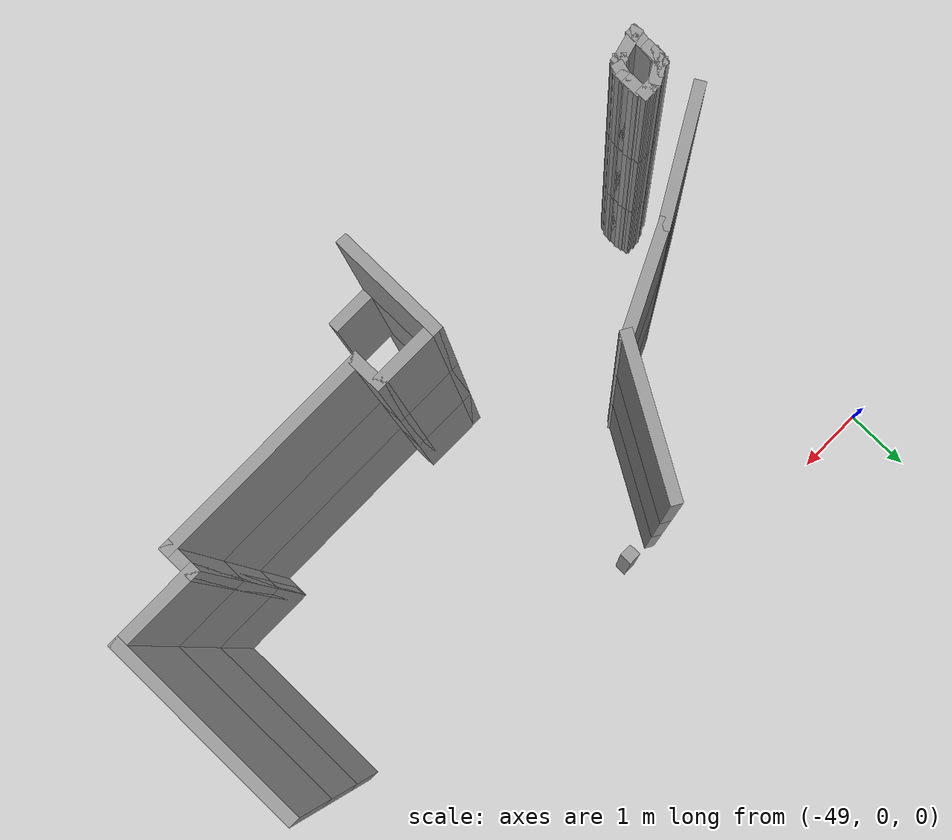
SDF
<sdf version="1.7">
 <model name="mapagazebo">
  <pose>-4.67869 9.01252 0 0 -0 0</pose>
  <link name="Wall_144">
   <collision name="Wall_144_Collision">
    <geometry><box><size>1.5 0.15 2.5</size></box></geometry>
    <pose>0 0 1.25 0 -0 0</pose>
   </collision>
   <visual name="Wall_144_Visual">
    <pose>0 0 1.25 0 -0 0</pose>
    <geometry><box><size>1.5 0.15 2.5</size></box></geometry>
    <material>
     <script><uri>file://media/materials/scripts/gazebo.material</uri><name>Gazebo/Grey</name></script>
     <ambient>1 1 1 1</ambient>
    </material>
    <meta><layer>0</layer></meta>
   </visual>
   <pose>-40.3346 -13.7815 0 0 -0 1.5708</pose>
  </link>
  <link name="Wall_145">
   <collision name="Wall_145_Collision">
    <geometry><box><size>1 0.15 2.5</size></box></geometry>
    <pose>0 0 1.25 0 -0 0</pose>
   </collision>
   <visual name="Wall_145_Visual">
    <pose>0 0 1.25 0 -0 0</pose>
    <geometry><box><size>1 0.15 2.5</size></box></geometry>
    <material>
     <script><uri>file://media/materials/scripts/gazebo.material</uri><name>Gazebo/Grey</name></script>
     <ambient>1 1 1 1</ambient>
    </material>
    <meta><layer>0</layer></meta>
   </visual>
   <pose>-39.9096 -13.1065 0 0 -0 0</pose>
  </link>
  <link name="Wall_146">
   <collision name="Wall_146_Collision">
    <geometry><box><size>0.5 0.15 2.5</size></box></geometry>
    <pose>0 0 1.25 0 -0 0</pose>
   </collision>
   <visual name="Wall_146_Visual">
    <pose>0 0 1.25 0 -0 0</pose>
    <geometry><box><size>0.5 0.15 2.5</size></box></geometry>
    <material>
     <script><uri>file://media/materials/scripts/gazebo.material</uri><name>Gazebo/Grey</name></script>
     <ambient>1 1 1 1</ambient>
    </material>
    <meta><layer>0</layer></meta>
   </visual>
   <pose>-39.4846 -13.2815 0 0 -0 -1.5708</pose>
  </link>
  <link name="Wall_147">
   <collision name="Wall_147_Collision">
    <geometry><box><size>3 0.15 2.5</size></box></geometry>
    <pose>0 0 1.25 0 -0 0</pose>
   </collision>
   <visual name="Wall_147_Visual">
    <pose>0 0 1.25 0 -0 0</pose>
    <geometry><box><size>3 0.15 2.5</size></box></geometry>
    <material>
     <script><uri>file://media/materials/scripts/gazebo.material</uri><name>Gazebo/Grey</name></script>
     <ambient>1 1 1 1</ambient>
    </material>
    <meta><layer>0</layer></meta>
   </visual>
   <pose>-38.0596 -13.4565 0 0 -0 0</pose>
  </link>
  <link name="Wall_148">
   <collision name="Wall_148_Collision">
    <geometry><box><size>0.5 0.15 2.5</size></box></geometry>
    <pose>0 0 1.25 0 -0 0</pose>
   </collision>
   <visual name="Wall_148_Visual">
    <pose>0 0 1.25 0 -0 0</pose>
    <geometry><box><size>0.5 0.15 2.5</size></box></geometry>
    <material>
     <script><uri>file://media/materials/scripts/gazebo.material</uri><name>Gazebo/Grey</name></script>
     <ambient>1 1 1 1</ambient>
    </material>
    <meta><layer>0</layer></meta>
   </visual>
   <pose>-36.6346 -13.2815 0 0 -0 1.5708</pose>
  </link>
  <link name="Wall_149">
   <collision name="Wall_149_Collision">
    <geometry><box><size>1.25 0.15 2.5</size></box></geometry>
    <pose>0 0 1.25 0 -0 0</pose>
   </collision>
   <visual name="Wall_149_Visual">
    <pose>0 0 1.25 0 -0 0</pose>
    <geometry><box><size>1.25 0.15 2.5</size></box></geometry>
    <material>
     <script><uri>file://media/materials/scripts/gazebo.material</uri><name>Gazebo/Grey</name></script>
     <ambient>1 1 1 1</ambient>
    </material>
    <meta><layer>0</layer></meta>
   </visual>
   <pose>-36.0846 -13.1065 0 0 -0 0</pose>
  </link>
  <link name="Wall_150">
   <collision name="Wall_150_Collision">
    <geometry><box><size>2.75 0.15 2.5</size></box></geometry>
    <pose>0 0 1.25 0 -0 0</pose>
   </collision>
   <visual name="Wall_150_Visual">
    <pose>0 0 1.25 0 -0 0</pose>
    <geometry><box><size>2.75 0.15 2.5</size></box></geometry>
    <material>
     <script><uri>file://media/materials/scripts/gazebo.material</uri><name>Gazebo/Grey</name></script>
     <ambient>1 1 1 1</ambient>
    </material>
    <meta><layer>0</layer></meta>
   </visual>
   <pose>-35.5346 -11.8065 0 0 -0 1.5708</pose>
  </link>
  <link name="Wall_1506">
   <collision name="Wall_1506_Collision">
    <geometry><box><size>1.5 0.15 2.5</size></box></geometry>
    <pose>0 0 1.25 0 -0 0</pose>
   </collision>
   <visual name="Wall_1506_Visual">
    <pose>0 0 1.25 0 -0 0</pose>
    <geometry><box><size>1.5 0.15 2.5</size></box></geometry>
    <material>
     <script><uri>file://media/materials/scripts/gazebo.material</uri><name>Gazebo/Grey</name></script>
     <ambient>1 1 1 1</ambient>
    </material>
    <meta><layer>2</layer></meta>
   </visual>
   <pose>-40.3346 -13.7815 5 0 -0 1.5708</pose>
  </link>
  <link name="Wall_1507">
   <collision name="Wall_1507_Collision">
    <geometry><box><size>1 0.15 2.5</size></box></geometry>
    <pose>0 0 1.25 0 -0 0</pose>
   </collision>
   <visual name="Wall_1507_Visual">
    <pose>0 0 1.25 0 -0 0</pose>
    <geometry><box><size>1 0.15 2.5</size></box></geometry>
    <material>
     <script><uri>file://media/materials/scripts/gazebo.material</uri><name>Gazebo/Grey</name></script>
     <ambient>1 1 1 1</ambient>
    </material>
    <meta><layer>2</layer></meta>
   </visual>
   <pose>-39.9096 -13.1065 5 0 -0 0</pose>
  </link>
  <link name="Wall_1508">
   <collision name="Wall_1508_Collision">
    <geometry><box><size>0.5 0.15 2.5</size></box></geometry>
    <pose>0 0 1.25 0 -0 0</pose>
   </collision>
   <visual name="Wall_1508_Visual">
    <pose>0 0 1.25 0 -0 0</pose>
    <geometry><box><size>0.5 0.15 2.5</size></box></geometry>
    <material>
     <script><uri>file://media/materials/scripts/gazebo.material</uri><name>Gazebo/Grey</name></script>
     <ambient>1 1 1 1</ambient>
    </material>
    <meta><layer>2</layer></meta>
   </visual>
   <pose>-39.4846 -13.2815 5 0 -0 -1.5708</pose>
  </link>
  <link name="Wall_1509">
   <collision name="Wall_1509_Collision">
    <geometry><box><size>3 0.15 2.5</size></box></geometry>
    <pose>0 0 1.25 0 -0 0</pose>
   </collision>
   <visual name="Wall_1509_Visual">
    <pose>0 0 1.25 0 -0 0</pose>
    <geometry><box><size>3 0.15 2.5</size></box></geometry>
    <material>
     <script><uri>file://media/materials/scripts/gazebo.material</uri><name>Gazebo/Grey</name></script>
     <ambient>1 1 1 1</ambient>
    </material>
    <meta><layer>2</layer></meta>
   </visual>
   <pose>-38.0596 -13.4565 5 0 -0 0</pose>
  </link>
  <link name="Wall_1510">
   <collision name="Wall_1510_Collision">
    <geometry><box><size>0.5 0.15 2.5</size></box></geometry>
    <pose>0 0 1.25 0 -0 0</pose>
   </collision>
   <visual name="Wall_1510_Visual">
    <pose>0 0 1.25 0 -0 0</pose>
    <geometry><box><size>0.5 0.15 2.5</size></box></geometry>
    <material>
     <script><uri>file://media/materials/scripts/gazebo.material</uri><name>Gazebo/Grey</name></script>
     <ambient>1 1 1 1</ambient>
    </material>
    <meta><layer>2</layer></meta>
   </visual>
   <pose>-36.6346 -13.2815 5 0 -0 1.5708</pose>
  </link>
  <link name="Wall_1511">
   <collision name="Wall_1511_Collision">
    <geometry><box><size>1.25 0.15 2.5</size></box></geometry>
    <pose>0 0 1.25 0 -0 0</pose>
   </collision>
   <visual name="Wall_1511_Visual">
    <pose>0 0 1.25 0 -0 0</pose>
    <geometry><box><size>1.25 0.15 2.5</size></box></geometry>
    <material>
     <script><uri>file://media/materials/scripts/gazebo.material</uri><name>Gazebo/Grey</name></script>
     <ambient>1 1 1 1</ambient>
    </material>
    <meta><layer>2</layer></meta>
   </visual>
   <pose>-36.0846 -13.1065 5 0 -0 0</pose>
  </link>
  <link name="Wall_1512">
   <collision name="Wall_1512_Collision">
    <geometry><box><size>2.75 0.15 2.5</size></box></geometry>
    <pose>0 0 1.25 0 -0 0</pose>
   </collision>
   <visual name="Wall_1512_Visual">
    <pose>0 0 1.25 0 -0 0</pose>
    <geometry><box><size>2.75 0.15 2.5</size></box></geometry>
    <material>
     <script><uri>file://media/materials/scripts/gazebo.material</uri><name>Gazebo/Grey</name></script>
     <ambient>1 1 1 1</ambient>
    </material>
    <meta><layer>2</layer></meta>
   </visual>
   <pose>-35.5346 -11.8065 5 0 -0 1.5708</pose>
  </link>
  <link name="Wall_1555">
   <collision name="Wall_1555_Collision">
    <geometry><box><size>2 0.15 2.5</size></box></geometry>
    <pose>0 0 1.25 0 -0 0</pose>
   </collision>
   <visual name="Wall_1555_Visual">
    <pose>0 0 1.25 0 -0 0</pose>
    <geometry><box><size>2 0.15 2.5</size></box></geometry>
    <material>
     <script><uri>file://media/materials/scripts/gazebo.material</uri><name>Gazebo/Grey</name></script>
     <ambient>1 1 1 1</ambient>
    </material>
    <meta><layer>2</layer></meta>
   </visual>
   <pose>-41.276 -10.7234 5 0 -0 -2.0944</pose>
  </link>
  <link name="Wall_1563">
   <collision name="Wall_1563_Collision">
    <geometry><box><size>1.75 0.15 2.5</size></box></geometry>
    <pose>0 0 1.25 0 -0 0</pose>
   </collision>
   <visual name="Wall_1563_Visual">
    <pose>0 0 1.25 0 -0 0</pose>
    <geometry><box><size>1.75 0.15 2.5</size></box></geometry>
    <material>
     <script><uri>file://media/materials/scripts/gazebo.material</uri><name>Gazebo/Grey</name></script>
     <ambient>1 1 1 1</ambient>
    </material>
    <meta><layer>2</layer></meta>
   </visual>
   <pose>-43.6049 -12.49 5 0 -0 0.523599</pose>
  </link>
  <link name="Wall_1564">
   <collision name="Wall_1564_Collision">
    <geometry><box><size>1.45273 0.15 2.5</size></box></geometry>
    <pose>0 0 1.25 0 -0 0</pose>
   </collision>
   <visual name="Wall_1564_Visual">
    <pose>0 0 1.25 0 -0 0</pose>
    <geometry><box><size>1.45273 0.15 2.5</size></box></geometry>
    <material>
     <script><uri>file://media/materials/scripts/gazebo.material</uri><name>Gazebo/Grey</name></script>
     <ambient>1 1 1 1</ambient>
    </material>
    <meta><layer>2</layer></meta>
   </visual>
   <pose>-42.3253 -11.8072 5 0 -0 0.4491</pose>
  </link>
  <link name="Wall_1589">
   <collision name="Wall_1589_Collision">
    <geometry><box><size>0.25 0.15 2.5</size></box></geometry>
    <pose>0 0 1.25 0 -0 0</pose>
   </collision>
   <visual name="Wall_1589_Visual">
    <pose>0 0 1.25 0 -0 0</pose>
    <geometry><box><size>0.25 0.15 2.5</size></box></geometry>
    <material>
     <script><uri>file://media/materials/scripts/gazebo.material</uri><name>Gazebo/Grey</name></script>
     <ambient>1 1 1 1</ambient>
    </material>
    <meta><layer>2</layer></meta>
   </visual>
   <pose>-44.2334 -13.5447 5 0 -0 1.5708</pose>
  </link>
  <link name="Wall_1590">
   <collision name="Wall_1590_Collision">
    <geometry><box><size>0.15 0.15 2.5</size></box></geometry>
    <pose>0 0 1.25 0 -0 0</pose>
   </collision>
   <visual name="Wall_1590_Visual">
    <pose>0 0 1.25 0 -0 0</pose>
    <geometry><box><size>0.15 0.15 2.5</size></box></geometry>
    <material>
     <script><uri>file://media/materials/scripts/gazebo.material</uri><name>Gazebo/Grey</name></script>
     <ambient>1 1 1 1</ambient>
    </material>
    <meta><layer>2</layer></meta>
   </visual>
   <pose>-44.2334 -13.4947 5 0 -0 0</pose>
  </link>
  <link name="Wall_1591">
   <collision name="Wall_1591_Collision">
    <geometry><box><size>0.25 0.15 2.5</size></box></geometry>
    <pose>0 0 1.25 0 -0 0</pose>
   </collision>
   <visual name="Wall_1591_Visual">
    <pose>0 0 1.25 0 -0 0</pose>
    <geometry><box><size>0.25 0.15 2.5</size></box></geometry>
    <material>
     <script><uri>file://media/materials/scripts/gazebo.material</uri><name>Gazebo/Grey</name></script>
     <ambient>1 1 1 1</ambient>
    </material>
    <meta><layer>2</layer></meta>
   </visual>
   <pose>-44.2204 -13.4464 5 0 -0 1.309</pose>
  </link>
  <link name="Wall_1592">
   <collision name="Wall_1592_Collision">
    <geometry><box><size>0.25 0.15 2.5</size></box></geometry>
    <pose>0 0 1.25 0 -0 0</pose>
   </collision>
   <visual name="Wall_1592_Visual">
    <pose>0 0 1.25 0 -0 0</pose>
    <geometry><box><size>0.25 0.15 2.5</size></box></geometry>
    <material>
     <script><uri>file://media/materials/scripts/gazebo.material</uri><name>Gazebo/Grey</name></script>
     <ambient>1 1 1 1</ambient>
    </material>
    <meta><layer>2</layer></meta>
   </visual>
   <pose>-44.1642 -13.3731 5 0 -0 0.523599</pose>
  </link>
  <link name="Wall_1593">
   <collision name="Wall_1593_Collision">
    <geometry><box><size>0.25 0.15 2.5</size></box></geometry>
    <pose>0 0 1.25 0 -0 0</pose>
   </collision>
   <visual name="Wall_1593_Visual">
    <pose>0 0 1.25 0 -0 0</pose>
    <geometry><box><size>0.25 0.15 2.5</size></box></geometry>
    <material>
     <script><uri>file://media/materials/scripts/gazebo.material</uri><name>Gazebo/Grey</name></script>
     <ambient>1 1 1 1</ambient>
    </material>
    <meta><layer>2</layer></meta>
   </visual>
   <pose>-44.0776 -13.3231 5 0 -0 0.523599</pose>
  </link>
  <link name="Wall_1594">
   <collision name="Wall_1594_Collision">
    <geometry><box><size>0.25 0.15 2.5</size></box></geometry>
    <pose>0 0 1.25 0 -0 0</pose>
   </collision>
   <visual name="Wall_1594_Visual">
    <pose>0 0 1.25 0 -0 0</pose>
    <geometry><box><size>0.25 0.15 2.5</size></box></geometry>
    <material>
     <script><uri>file://media/materials/scripts/gazebo.material</uri><name>Gazebo/Grey</name></script>
     <ambient>1 1 1 1</ambient>
    </material>
    <meta><layer>2</layer></meta>
   </visual>
   <pose>-43.986 -13.2852 5 0 -0 0.261799</pose>
  </link>
  <link name="Wall_1595">
   <collision name="Wall_1595_Collision">
    <geometry><box><size>0.25 0.15 2.5</size></box></geometry>
    <pose>0 0 1.25 0 -0 0</pose>
   </collision>
   <visual name="Wall_1595_Visual">
    <pose>0 0 1.25 0 -0 0</pose>
    <geometry><box><size>0.25 0.15 2.5</size></box></geometry>
    <material>
     <script><uri>file://media/materials/scripts/gazebo.material</uri><name>Gazebo/Grey</name></script>
     <ambient>1 1 1 1</ambient>
    </material>
    <meta><layer>2</layer></meta>
   </visual>
   <pose>-43.8877 -13.2722 5 0 -0 0</pose>
  </link>
  <link name="Wall_1596">
   <collision name="Wall_1596_Collision">
    <geometry><box><size>0.25 0.15 2.5</size></box></geometry>
    <pose>0 0 1.25 0 -0 0</pose>
   </collision>
   <visual name="Wall_1596_Visual">
    <pose>0 0 1.25 0 -0 0</pose>
    <geometry><box><size>0.25 0.15 2.5</size></box></geometry>
    <material>
     <script><uri>file://media/materials/scripts/gazebo.material</uri><name>Gazebo/Grey</name></script>
     <ambient>1 1 1 1</ambient>
    </material>
    <meta><layer>2</layer></meta>
   </visual>
   <pose>-43.8248 -13.3205 5 0 -0 -1.309</pose>
  </link>
  <link name="Wall_1597">
   <collision name="Wall_1597_Collision">
    <geometry><box><size>0.25 0.15 2.5</size></box></geometry>
    <pose>0 0 1.25 0 -0 0</pose>
   </collision>
   <visual name="Wall_1597_Visual">
    <pose>0 0 1.25 0 -0 0</pose>
    <geometry><box><size>0.25 0.15 2.5</size></box></geometry>
    <material>
     <script><uri>file://media/materials/scripts/gazebo.material</uri><name>Gazebo/Grey</name></script>
     <ambient>1 1 1 1</ambient>
    </material>
    <meta><layer>2</layer></meta>
   </visual>
   <pose>-43.8118 -13.4188 5 0 -0 -1.5708</pose>
  </link>
  <link name="Wall_1598">
   <collision name="Wall_1598_Collision">
    <geometry><box><size>0.25 0.15 2.5</size></box></geometry>
    <pose>0 0 1.25 0 -0 0</pose>
   </collision>
   <visual name="Wall_1598_Visual">
    <pose>0 0 1.25 0 -0 0</pose>
    <geometry><box><size>0.25 0.15 2.5</size></box></geometry>
    <material>
     <script><uri>file://media/materials/scripts/gazebo.material</uri><name>Gazebo/Grey</name></script>
     <ambient>1 1 1 1</ambient>
    </material>
    <meta><layer>2</layer></meta>
   </visual>
   <pose>-43.8118 -13.5188 5 0 -0 -1.5708</pose>
  </link>
  <link name="Wall_1599">
   <collision name="Wall_1599_Collision">
    <geometry><box><size>0.25 0.15 2.5</size></box></geometry>
    <pose>0 0 1.25 0 -0 0</pose>
   </collision>
   <visual name="Wall_1599_Visual">
    <pose>0 0 1.25 0 -0 0</pose>
    <geometry><box><size>0.25 0.15 2.5</size></box></geometry>
    <material>
     <script><uri>file://media/materials/scripts/gazebo.material</uri><name>Gazebo/Grey</name></script>
     <ambient>1 1 1 1</ambient>
    </material>
    <meta><layer>2</layer></meta>
   </visual>
   <pose>-43.8248 -13.6171 5 0 -0 -1.8326</pose>
  </link>
  <link name="Wall_1600">
   <collision name="Wall_1600_Collision">
    <geometry><box><size>0.25 0.15 2.5</size></box></geometry>
    <pose>0 0 1.25 0 -0 0</pose>
   </collision>
   <visual name="Wall_1600_Visual">
    <pose>0 0 1.25 0 -0 0</pose>
    <geometry><box><size>0.25 0.15 2.5</size></box></geometry>
    <material>
     <script><uri>file://media/materials/scripts/gazebo.material</uri><name>Gazebo/Grey</name></script>
     <ambient>1 1 1 1</ambient>
    </material>
    <meta><layer>2</layer></meta>
   </visual>
   <pose>-43.8731 -13.7008 5 0 -0 -2.35619</pose>
  </link>
  <link name="Wall_1601">
   <collision name="Wall_1601_Collision">
    <geometry><box><size>0.15 0.15 2.5</size></box></geometry>
    <pose>0 0 1.25 0 -0 0</pose>
   </collision>
   <visual name="Wall_1601_Visual">
    <pose>0 0 1.25 0 -0 0</pose>
    <geometry><box><size>0.15 0.15 2.5</size></box></geometry>
    <material>
     <script><uri>file://media/materials/scripts/gazebo.material</uri><name>Gazebo/Grey</name></script>
     <ambient>1 1 1 1</ambient>
    </material>
    <meta><layer>2</layer></meta>
   </visual>
   <pose>-43.9084 -13.7361 5 0 -0 0</pose>
  </link>
  <link name="Wall_1602">
   <collision name="Wall_1602_Collision">
    <geometry><box><size>0.5 0.15 2.5</size></box></geometry>
    <pose>0 0 1.25 0 -0 0</pose>
   </collision>
   <visual name="Wall_1602_Visual">
    <pose>0 0 1.25 0 -0 0</pose>
    <geometry><box><size>0.5 0.15 2.5</size></box></geometry>
    <material>
     <script><uri>file://media/materials/scripts/gazebo.material</uri><name>Gazebo/Grey</name></script>
     <ambient>1 1 1 1</ambient>
    </material>
    <meta><layer>2</layer></meta>
   </visual>
   <pose>-44.0775 -13.7814 5 0 -0 -2.87979</pose>
  </link>
  <link name="Wall_1603">
   <collision name="Wall_1603_Collision">
    <geometry><box><size>0.15 0.15 2.5</size></box></geometry>
    <pose>0 0 1.25 0 -0 0</pose>
   </collision>
   <visual name="Wall_1603_Visual">
    <pose>0 0 1.25 0 -0 0</pose>
    <geometry><box><size>0.15 0.15 2.5</size></box></geometry>
    <material>
     <script><uri>file://media/materials/scripts/gazebo.material</uri><name>Gazebo/Grey</name></script>
     <ambient>1 1 1 1</ambient>
    </material>
    <meta><layer>2</layer></meta>
   </visual>
   <pose>-44.2465 -13.8267 5 0 -0 0</pose>
  </link>
  <link name="Wall_1604">
   <collision name="Wall_1604_Collision">
    <geometry><box><size>0.58037 0.15 2.5</size></box></geometry>
    <pose>0 0 1.25 0 -0 0</pose>
   </collision>
   <visual name="Wall_1604_Visual">
    <pose>0 0 1.25 0 -0 0</pose>
    <geometry><box><size>0.58037 0.15 2.5</size></box></geometry>
    <material>
     <script><uri>file://media/materials/scripts/gazebo.material</uri><name>Gazebo/Grey</name></script>
     <ambient>1 1 1 1</ambient>
    </material>
    <meta><layer>2</layer></meta>
   </visual>
   <pose>-44.227 -13.6124 5 0 -0 1.48008</pose>
  </link>
  <link name="Wall_1605">
   <collision name="Wall_1605_Collision">
    <geometry><box><size>0.15 0.15 2.5</size></box></geometry>
    <pose>0 0 1.25 0 -0 0</pose>
   </collision>
   <visual name="Wall_1605_Visual">
    <pose>0 0 1.25 0 -0 0</pose>
    <geometry><box><size>0.15 0.15 2.5</size></box></geometry>
    <material>
     <script><uri>file://media/materials/scripts/gazebo.material</uri><name>Gazebo/Grey</name></script>
     <ambient>1 1 1 1</ambient>
    </material>
    <meta><layer>2</layer></meta>
   </visual>
   <pose>-44.2075 -13.3981 5 0 -0 0</pose>
  </link>
  <link name="Wall_1617">
   <collision name="Wall_1617_Collision">
    <geometry><box><size>0.15 0.15 2.5</size></box></geometry>
    <pose>0 0 1.25 0 -0 0</pose>
   </collision>
   <visual name="Wall_1617_Visual">
    <pose>0 0 1.25 0 -0 0</pose>
    <geometry><box><size>0.15 0.15 2.5</size></box></geometry>
    <material>
     <script><uri>file://media/materials/scripts/gazebo.material</uri><name>Gazebo/Grey</name></script>
     <ambient>1 1 1 1</ambient>
    </material>
    <meta><layer>2</layer></meta>
   </visual>
   <pose>-40.0421 -9.85136 5 0 -0 0</pose>
  </link>
  <link name="Wall_202">
   <collision name="Wall_202_Collision">
    <geometry><box><size>2 0.15 2.5</size></box></geometry>
    <pose>0 0 1.25 0 -0 0</pose>
   </collision>
   <visual name="Wall_202_Visual">
    <pose>0 0 1.25 0 -0 0</pose>
    <geometry><box><size>2 0.15 2.5</size></box></geometry>
    <material>
     <script><uri>file://media/materials/scripts/gazebo.material</uri><name>Gazebo/Grey</name></script>
     <ambient>1 1 1 1</ambient>
    </material>
    <meta><layer>0</layer></meta>
   </visual>
   <pose>-41.276 -10.7234 0 0 -0 -2.0944</pose>
  </link>
  <link name="Wall_218">
   <collision name="Wall_218_Collision">
    <geometry><box><size>1.75 0.15 2.5</size></box></geometry>
    <pose>0 0 1.25 0 -0 0</pose>
   </collision>
   <visual name="Wall_218_Visual">
    <pose>0 0 1.25 0 -0 0</pose>
    <geometry><box><size>1.75 0.15 2.5</size></box></geometry>
    <material>
     <script><uri>file://media/materials/scripts/gazebo.material</uri><name>Gazebo/Grey</name></script>
     <ambient>1 1 1 1</ambient>
    </material>
    <meta><layer>0</layer></meta>
   </visual>
   <pose>-43.6049 -12.49 0 0 -0 0.523599</pose>
  </link>
  <link name="Wall_219">
   <collision name="Wall_219_Collision">
    <geometry><box><size>1.45273 0.15 2.5</size></box></geometry>
    <pose>0 0 1.25 0 -0 0</pose>
   </collision>
   <visual name="Wall_219_Visual">
    <pose>0 0 1.25 0 -0 0</pose>
    <geometry><box><size>1.45273 0.15 2.5</size></box></geometry>
    <material>
     <script><uri>file://media/materials/scripts/gazebo.material</uri><name>Gazebo/Grey</name></script>
     <ambient>1 1 1 1</ambient>
    </material>
    <meta><layer>0</layer></meta>
   </visual>
   <pose>-42.3253 -11.8072 0 0 -0 0.4491</pose>
  </link>
  <link name="Wall_248">
   <collision name="Wall_248_Collision">
    <geometry><box><size>0.25 0.15 2.5</size></box></geometry>
    <pose>0 0 1.25 0 -0 0</pose>
   </collision>
   <visual name="Wall_248_Visual">
    <pose>0 0 1.25 0 -0 0</pose>
    <geometry><box><size>0.25 0.15 2.5</size></box></geometry>
    <material>
     <script><uri>file://media/materials/scripts/gazebo.material</uri><name>Gazebo/Grey</name></script>
     <ambient>1 1 1 1</ambient>
    </material>
    <meta><layer>0</layer></meta>
   </visual>
   <pose>-44.2334 -13.5447 0 0 -0 1.5708</pose>
  </link>
  <link name="Wall_249">
   <collision name="Wall_249_Collision">
    <geometry><box><size>0.15 0.15 2.5</size></box></geometry>
    <pose>0 0 1.25 0 -0 0</pose>
   </collision>
   <visual name="Wall_249_Visual">
    <pose>0 0 1.25 0 -0 0</pose>
    <geometry><box><size>0.15 0.15 2.5</size></box></geometry>
    <material>
     <script><uri>file://media/materials/scripts/gazebo.material</uri><name>Gazebo/Grey</name></script>
     <ambient>1 1 1 1</ambient>
    </material>
    <meta><layer>0</layer></meta>
   </visual>
   <pose>-44.2334 -13.4947 0 0 -0 0</pose>
  </link>
  <link name="Wall_250">
   <collision name="Wall_250_Collision">
    <geometry><box><size>0.25 0.15 2.5</size></box></geometry>
    <pose>0 0 1.25 0 -0 0</pose>
   </collision>
   <visual name="Wall_250_Visual">
    <pose>0 0 1.25 0 -0 0</pose>
    <geometry><box><size>0.25 0.15 2.5</size></box></geometry>
    <material>
     <script><uri>file://media/materials/scripts/gazebo.material</uri><name>Gazebo/Grey</name></script>
     <ambient>1 1 1 1</ambient>
    </material>
    <meta><layer>0</layer></meta>
   </visual>
   <pose>-44.2204 -13.4464 0 0 -0 1.309</pose>
  </link>
  <link name="Wall_251">
   <collision name="Wall_251_Collision">
    <geometry><box><size>0.25 0.15 2.5</size></box></geometry>
    <pose>0 0 1.25 0 -0 0</pose>
   </collision>
   <visual name="Wall_251_Visual">
    <pose>0 0 1.25 0 -0 0</pose>
    <geometry><box><size>0.25 0.15 2.5</size></box></geometry>
    <material>
     <script><uri>file://media/materials/scripts/gazebo.material</uri><name>Gazebo/Grey</name></script>
     <ambient>1 1 1 1</ambient>
    </material>
    <meta><layer>0</layer></meta>
   </visual>
   <pose>-44.1642 -13.3731 0 0 -0 0.523599</pose>
  </link>
  <link name="Wall_252">
   <collision name="Wall_252_Collision">
    <geometry><box><size>0.25 0.15 2.5</size></box></geometry>
    <pose>0 0 1.25 0 -0 0</pose>
   </collision>
   <visual name="Wall_252_Visual">
    <pose>0 0 1.25 0 -0 0</pose>
    <geometry><box><size>0.25 0.15 2.5</size></box></geometry>
    <material>
     <script><uri>file://media/materials/scripts/gazebo.material</uri><name>Gazebo/Grey</name></script>
     <ambient>1 1 1 1</ambient>
    </material>
    <meta><layer>0</layer></meta>
   </visual>
   <pose>-44.0776 -13.3231 0 0 -0 0.523599</pose>
  </link>
  <link name="Wall_253">
   <collision name="Wall_253_Collision">
    <geometry><box><size>0.25 0.15 2.5</size></box></geometry>
    <pose>0 0 1.25 0 -0 0</pose>
   </collision>
   <visual name="Wall_253_Visual">
    <pose>0 0 1.25 0 -0 0</pose>
    <geometry><box><size>0.25 0.15 2.5</size></box></geometry>
    <material>
     <script><uri>file://media/materials/scripts/gazebo.material</uri><name>Gazebo/Grey</name></script>
     <ambient>1 1 1 1</ambient>
    </material>
    <meta><layer>0</layer></meta>
   </visual>
   <pose>-43.986 -13.2852 0 0 -0 0.261799</pose>
  </link>
  <link name="Wall_254">
   <collision name="Wall_254_Collision">
    <geometry><box><size>0.25 0.15 2.5</size></box></geometry>
    <pose>0 0 1.25 0 -0 0</pose>
   </collision>
   <visual name="Wall_254_Visual">
    <pose>0 0 1.25 0 -0 0</pose>
    <geometry><box><size>0.25 0.15 2.5</size></box></geometry>
    <material>
     <script><uri>file://media/materials/scripts/gazebo.material</uri><name>Gazebo/Grey</name></script>
     <ambient>1 1 1 1</ambient>
    </material>
    <meta><layer>0</layer></meta>
   </visual>
   <pose>-43.8877 -13.2722 0 0 -0 0</pose>
  </link>
  <link name="Wall_255">
   <collision name="Wall_255_Collision">
    <geometry><box><size>0.25 0.15 2.5</size></box></geometry>
    <pose>0 0 1.25 0 -0 0</pose>
   </collision>
   <visual name="Wall_255_Visual">
    <pose>0 0 1.25 0 -0 0</pose>
    <geometry><box><size>0.25 0.15 2.5</size></box></geometry>
    <material>
     <script><uri>file://media/materials/scripts/gazebo.material</uri><name>Gazebo/Grey</name></script>
     <ambient>1 1 1 1</ambient>
    </material>
    <meta><layer>0</layer></meta>
   </visual>
   <pose>-43.8248 -13.3205 0 0 -0 -1.309</pose>
  </link>
  <link name="Wall_256">
   <collision name="Wall_256_Collision">
    <geometry><box><size>0.25 0.15 2.5</size></box></geometry>
    <pose>0 0 1.25 0 -0 0</pose>
   </collision>
   <visual name="Wall_256_Visual">
    <pose>0 0 1.25 0 -0 0</pose>
    <geometry><box><size>0.25 0.15 2.5</size></box></geometry>
    <material>
     <script><uri>file://media/materials/scripts/gazebo.material</uri><name>Gazebo/Grey</name></script>
     <ambient>1 1 1 1</ambient>
    </material>
    <meta><layer>0</layer></meta>
   </visual>
   <pose>-43.8118 -13.4188 0 0 -0 -1.5708</pose>
  </link>
  <link name="Wall_257">
   <collision name="Wall_257_Collision">
    <geometry><box><size>0.25 0.15 2.5</size></box></geometry>
    <pose>0 0 1.25 0 -0 0</pose>
   </collision>
   <visual name="Wall_257_Visual">
    <pose>0 0 1.25 0 -0 0</pose>
    <geometry><box><size>0.25 0.15 2.5</size></box></geometry>
    <material>
     <script><uri>file://media/materials/scripts/gazebo.material</uri><name>Gazebo/Grey</name></script>
     <ambient>1 1 1 1</ambient>
    </material>
    <meta><layer>0</layer></meta>
   </visual>
   <pose>-43.8118 -13.5188 0 0 -0 -1.5708</pose>
  </link>
  <link name="Wall_258">
   <collision name="Wall_258_Collision">
    <geometry><box><size>0.25 0.15 2.5</size></box></geometry>
    <pose>0 0 1.25 0 -0 0</pose>
   </collision>
   <visual name="Wall_258_Visual">
    <pose>0 0 1.25 0 -0 0</pose>
    <geometry><box><size>0.25 0.15 2.5</size></box></geometry>
    <material>
     <script><uri>file://media/materials/scripts/gazebo.material</uri><name>Gazebo/Grey</name></script>
     <ambient>1 1 1 1</ambient>
    </material>
    <meta><layer>0</layer></meta>
   </visual>
   <pose>-43.8248 -13.6171 0 0 -0 -1.8326</pose>
  </link>
  <link name="Wall_259">
   <collision name="Wall_259_Collision">
    <geometry><box><size>0.25 0.15 2.5</size></box></geometry>
    <pose>0 0 1.25 0 -0 0</pose>
   </collision>
   <visual name="Wall_259_Visual">
    <pose>0 0 1.25 0 -0 0</pose>
    <geometry><box><size>0.25 0.15 2.5</size></box></geometry>
    <material>
     <script><uri>file://media/materials/scripts/gazebo.material</uri><name>Gazebo/Grey</name></script>
     <ambient>1 1 1 1</ambient>
    </material>
    <meta><layer>0</layer></meta>
   </visual>
   <pose>-43.8731 -13.7008 0 0 -0 -2.35619</pose>
  </link>
  <link name="Wall_260">
   <collision name="Wall_260_Collision">
    <geometry><box><size>0.15 0.15 2.5</size></box></geometry>
    <pose>0 0 1.25 0 -0 0</pose>
   </collision>
   <visual name="Wall_260_Visual">
    <pose>0 0 1.25 0 -0 0</pose>
    <geometry><box><size>0.15 0.15 2.5</size></box></geometry>
    <material>
     <script><uri>file://media/materials/scripts/gazebo.material</uri><name>Gazebo/Grey</name></script>
     <ambient>1 1 1 1</ambient>
    </material>
    <meta><layer>0</layer></meta>
   </visual>
   <pose>-43.9084 -13.7361 0 0 -0 0</pose>
  </link>
  <link name="Wall_261">
   <collision name="Wall_261_Collision">
    <geometry><box><size>0.5 0.15 2.5</size></box></geometry>
    <pose>0 0 1.25 0 -0 0</pose>
   </collision>
   <visual name="Wall_261_Visual">
    <pose>0 0 1.25 0 -0 0</pose>
    <geometry><box><size>0.5 0.15 2.5</size></box></geometry>
    <material>
     <script><uri>file://media/materials/scripts/gazebo.material</uri><name>Gazebo/Grey</name></script>
     <ambient>1 1 1 1</ambient>
    </material>
    <meta><layer>0</layer></meta>
   </visual>
   <pose>-44.0775 -13.7814 0 0 -0 -2.87979</pose>
  </link>
  <link name="Wall_262">
   <collision name="Wall_262_Collision">
    <geometry><box><size>0.15 0.15 2.5</size></box></geometry>
    <pose>0 0 1.25 0 -0 0</pose>
   </collision>
   <visual name="Wall_262_Visual">
    <pose>0 0 1.25 0 -0 0</pose>
    <geometry><box><size>0.15 0.15 2.5</size></box></geometry>
    <material>
     <script><uri>file://media/materials/scripts/gazebo.material</uri><name>Gazebo/Grey</name></script>
     <ambient>1 1 1 1</ambient>
    </material>
    <meta><layer>0</layer></meta>
   </visual>
   <pose>-44.2465 -13.8267 0 0 -0 0</pose>
  </link>
  <link name="Wall_263">
   <collision name="Wall_263_Collision">
    <geometry><box><size>0.58037 0.15 2.5</size></box></geometry>
    <pose>0 0 1.25 0 -0 0</pose>
   </collision>
   <visual name="Wall_263_Visual">
    <pose>0 0 1.25 0 -0 0</pose>
    <geometry><box><size>0.58037 0.15 2.5</size></box></geometry>
    <material>
     <script><uri>file://media/materials/scripts/gazebo.material</uri><name>Gazebo/Grey</name></script>
     <ambient>1 1 1 1</ambient>
    </material>
    <meta><layer>0</layer></meta>
   </visual>
   <pose>-44.227 -13.6124 0 0 -0 1.48008</pose>
  </link>
  <link name="Wall_264">
   <collision name="Wall_264_Collision">
    <geometry><box><size>0.15 0.15 2.5</size></box></geometry>
    <pose>0 0 1.25 0 -0 0</pose>
   </collision>
   <visual name="Wall_264_Visual">
    <pose>0 0 1.25 0 -0 0</pose>
    <geometry><box><size>0.15 0.15 2.5</size></box></geometry>
    <material>
     <script><uri>file://media/materials/scripts/gazebo.material</uri><name>Gazebo/Grey</name></script>
     <ambient>1 1 1 1</ambient>
    </material>
    <meta><layer>0</layer></meta>
   </visual>
   <pose>-44.2075 -13.3981 0 0 -0 0</pose>
  </link>
  <link name="Wall_881">
   <collision name="Wall_881_Collision">
    <geometry><box><size>0.75 0.15 2.5</size></box></geometry>
    <pose>0 0 1.25 0 -0 0</pose>
   </collision>
   <visual name="Wall_881_Visual">
    <pose>0 0 1.25 0 -0 0</pose>
    <geometry><box><size>0.75 0.15 2.5</size></box></geometry>
    <material>
     <script><uri>file://media/materials/scripts/gazebo.material</uri><name>Gazebo/Grey</name></script>
     <ambient>1 1 1 1</ambient>
    </material>
    <meta><layer>1</layer></meta>
   </visual>
   <pose>-40.0346 -14.4565 2.5 0 -0 3.14159</pose>
  </link>
  <link name="Wall_882">
   <collision name="Wall_882_Collision">
    <geometry><box><size>1.5 0.15 2.5</size></box></geometry>
    <pose>0 0 1.25 0 -0 0</pose>
   </collision>
   <visual name="Wall_882_Visual">
    <pose>0 0 1.25 0 -0 0</pose>
    <geometry><box><size>1.5 0.15 2.5</size></box></geometry>
    <material>
     <script><uri>file://media/materials/scripts/gazebo.material</uri><name>Gazebo/Grey</name></script>
     <ambient>1 1 1 1</ambient>
    </material>
    <meta><layer>1</layer></meta>
   </visual>
   <pose>-40.3346 -13.7815 2.5 0 -0 1.5708</pose>
  </link>
  <link name="Wall_883">
   <collision name="Wall_883_Collision">
    <geometry><box><size>1 0.15 2.5</size></box></geometry>
    <pose>0 0 1.25 0 -0 0</pose>
   </collision>
   <visual name="Wall_883_Visual">
    <pose>0 0 1.25 0 -0 0</pose>
    <geometry><box><size>1 0.15 2.5</size></box></geometry>
    <material>
     <script><uri>file://media/materials/scripts/gazebo.material</uri><name>Gazebo/Grey</name></script>
     <ambient>1 1 1 1</ambient>
    </material>
    <meta><layer>1</layer></meta>
   </visual>
   <pose>-39.9096 -13.1065 2.5 0 -0 0</pose>
  </link>
  <link name="Wall_884">
   <collision name="Wall_884_Collision">
    <geometry><box><size>0.5 0.15 2.5</size></box></geometry>
    <pose>0 0 1.25 0 -0 0</pose>
   </collision>
   <visual name="Wall_884_Visual">
    <pose>0 0 1.25 0 -0 0</pose>
    <geometry><box><size>0.5 0.15 2.5</size></box></geometry>
    <material>
     <script><uri>file://media/materials/scripts/gazebo.material</uri><name>Gazebo/Grey</name></script>
     <ambient>1 1 1 1</ambient>
    </material>
    <meta><layer>1</layer></meta>
   </visual>
   <pose>-39.4846 -13.2815 2.5 0 -0 -1.5708</pose>
  </link>
  <link name="Wall_885">
   <collision name="Wall_885_Collision">
    <geometry><box><size>3 0.15 2.5</size></box></geometry>
    <pose>0 0 1.25 0 -0 0</pose>
   </collision>
   <visual name="Wall_885_Visual">
    <pose>0 0 1.25 0 -0 0</pose>
    <geometry><box><size>3 0.15 2.5</size></box></geometry>
    <material>
     <script><uri>file://media/materials/scripts/gazebo.material</uri><name>Gazebo/Grey</name></script>
     <ambient>1 1 1 1</ambient>
    </material>
    <meta><layer>1</layer></meta>
   </visual>
   <pose>-38.0596 -13.4565 2.5 0 -0 0</pose>
  </link>
  <link name="Wall_886">
   <collision name="Wall_886_Collision">
    <geometry><box><size>0.5 0.15 2.5</size></box></geometry>
    <pose>0 0 1.25 0 -0 0</pose>
   </collision>
   <visual name="Wall_886_Visual">
    <pose>0 0 1.25 0 -0 0</pose>
    <geometry><box><size>0.5 0.15 2.5</size></box></geometry>
    <material>
     <script><uri>file://media/materials/scripts/gazebo.material</uri><name>Gazebo/Grey</name></script>
     <ambient>1 1 1 1</ambient>
    </material>
    <meta><layer>1</layer></meta>
   </visual>
   <pose>-36.6346 -13.2815 2.5 0 -0 1.5708</pose>
  </link>
  <link name="Wall_887">
   <collision name="Wall_887_Collision">
    <geometry><box><size>1.25 0.15 2.5</size></box></geometry>
    <pose>0 0 1.25 0 -0 0</pose>
   </collision>
   <visual name="Wall_887_Visual">
    <pose>0 0 1.25 0 -0 0</pose>
    <geometry><box><size>1.25 0.15 2.5</size></box></geometry>
    <material>
     <script><uri>file://media/materials/scripts/gazebo.material</uri><name>Gazebo/Grey</name></script>
     <ambient>1 1 1 1</ambient>
    </material>
    <meta><layer>1</layer></meta>
   </visual>
   <pose>-36.0846 -13.1065 2.5 0 -0 0</pose>
  </link>
  <link name="Wall_888">
   <collision name="Wall_888_Collision">
    <geometry><box><size>2.75 0.15 2.5</size></box></geometry>
    <pose>0 0 1.25 0 -0 0</pose>
   </collision>
   <visual name="Wall_888_Visual">
    <pose>0 0 1.25 0 -0 0</pose>
    <geometry><box><size>2.75 0.15 2.5</size></box></geometry>
    <material>
     <script><uri>file://media/materials/scripts/gazebo.material</uri><name>Gazebo/Grey</name></script>
     <ambient>1 1 1 1</ambient>
    </material>
    <meta><layer>1</layer></meta>
   </visual>
   <pose>-35.5346 -11.8065 2.5 0 -0 1.5708</pose>
  </link>
  <link name="Wall_931">
   <collision name="Wall_931_Collision">
    <geometry><box><size>2 0.15 2.5</size></box></geometry>
    <pose>0 0 1.25 0 -0 0</pose>
   </collision>
   <visual name="Wall_931_Visual">
    <pose>0 0 1.25 0 -0 0</pose>
    <geometry><box><size>2 0.15 2.5</size></box></geometry>
    <material>
     <script><uri>file://media/materials/scripts/gazebo.material</uri><name>Gazebo/Grey</name></script>
     <ambient>1 1 1 1</ambient>
    </material>
    <meta><layer>1</layer></meta>
   </visual>
   <pose>-41.276 -10.7234 2.5 0 -0 -2.0944</pose>
  </link>
  <link name="Wall_939">
   <collision name="Wall_939_Collision">
    <geometry><box><size>1.75 0.15 2.5</size></box></geometry>
    <pose>0 0 1.25 0 -0 0</pose>
   </collision>
   <visual name="Wall_939_Visual">
    <pose>0 0 1.25 0 -0 0</pose>
    <geometry><box><size>1.75 0.15 2.5</size></box></geometry>
    <material>
     <script><uri>file://media/materials/scripts/gazebo.material</uri><name>Gazebo/Grey</name></script>
     <ambient>1 1 1 1</ambient>
    </material>
    <meta><layer>1</layer></meta>
   </visual>
   <pose>-43.6049 -12.49 2.5 0 -0 0.523599</pose>
  </link>
  <link name="Wall_940">
   <collision name="Wall_940_Collision">
    <geometry><box><size>1.45273 0.15 2.5</size></box></geometry>
    <pose>0 0 1.25 0 -0 0</pose>
   </collision>
   <visual name="Wall_940_Visual">
    <pose>0 0 1.25 0 -0 0</pose>
    <geometry><box><size>1.45273 0.15 2.5</size></box></geometry>
    <material>
     <script><uri>file://media/materials/scripts/gazebo.material</uri><name>Gazebo/Grey</name></script>
     <ambient>1 1 1 1</ambient>
    </material>
    <meta><layer>1</layer></meta>
   </visual>
   <pose>-42.3253 -11.8072 2.5 0 -0 0.4491</pose>
  </link>
  <link name="Wall_965">
   <collision name="Wall_965_Collision">
    <geometry><box><size>0.25 0.15 2.5</size></box></geometry>
    <pose>0 0 1.25 0 -0 0</pose>
   </collision>
   <visual name="Wall_965_Visual">
    <pose>0 0 1.25 0 -0 0</pose>
    <geometry><box><size>0.25 0.15 2.5</size></box></geometry>
    <material>
     <script><uri>file://media/materials/scripts/gazebo.material</uri><name>Gazebo/Grey</name></script>
     <ambient>1 1 1 1</ambient>
    </material>
    <meta><layer>1</layer></meta>
   </visual>
   <pose>-44.2334 -13.5447 2.5 0 -0 1.5708</pose>
  </link>
  <link name="Wall_966">
   <collision name="Wall_966_Collision">
    <geometry><box><size>0.15 0.15 2.5</size></box></geometry>
    <pose>0 0 1.25 0 -0 0</pose>
   </collision>
   <visual name="Wall_966_Visual">
    <pose>0 0 1.25 0 -0 0</pose>
    <geometry><box><size>0.15 0.15 2.5</size></box></geometry>
    <material>
     <script><uri>file://media/materials/scripts/gazebo.material</uri><name>Gazebo/Grey</name></script>
     <ambient>1 1 1 1</ambient>
    </material>
    <meta><layer>1</layer></meta>
   </visual>
   <pose>-44.2334 -13.4947 2.5 0 -0 0</pose>
  </link>
  <link name="Wall_967">
   <collision name="Wall_967_Collision">
    <geometry><box><size>0.25 0.15 2.5</size></box></geometry>
    <pose>0 0 1.25 0 -0 0</pose>
   </collision>
   <visual name="Wall_967_Visual">
    <pose>0 0 1.25 0 -0 0</pose>
    <geometry><box><size>0.25 0.15 2.5</size></box></geometry>
    <material>
     <script><uri>file://media/materials/scripts/gazebo.material</uri><name>Gazebo/Grey</name></script>
     <ambient>1 1 1 1</ambient>
    </material>
    <meta><layer>1</layer></meta>
   </visual>
   <pose>-44.2204 -13.4464 2.5 0 -0 1.309</pose>
  </link>
  <link name="Wall_968">
   <collision name="Wall_968_Collision">
    <geometry><box><size>0.25 0.15 2.5</size></box></geometry>
    <pose>0 0 1.25 0 -0 0</pose>
   </collision>
   <visual name="Wall_968_Visual">
    <pose>0 0 1.25 0 -0 0</pose>
    <geometry><box><size>0.25 0.15 2.5</size></box></geometry>
    <material>
     <script><uri>file://media/materials/scripts/gazebo.material</uri><name>Gazebo/Grey</name></script>
     <ambient>1 1 1 1</ambient>
    </material>
    <meta><layer>1</layer></meta>
   </visual>
   <pose>-44.1642 -13.3731 2.5 0 -0 0.523599</pose>
  </link>
  <link name="Wall_969">
   <collision name="Wall_969_Collision">
    <geometry><box><size>0.25 0.15 2.5</size></box></geometry>
    <pose>0 0 1.25 0 -0 0</pose>
   </collision>
   <visual name="Wall_969_Visual">
    <pose>0 0 1.25 0 -0 0</pose>
    <geometry><box><size>0.25 0.15 2.5</size></box></geometry>
    <material>
     <script><uri>file://media/materials/scripts/gazebo.material</uri><name>Gazebo/Grey</name></script>
     <ambient>1 1 1 1</ambient>
    </material>
    <meta><layer>1</layer></meta>
   </visual>
   <pose>-44.0776 -13.3231 2.5 0 -0 0.523599</pose>
  </link>
  <link name="Wall_970">
   <collision name="Wall_970_Collision">
    <geometry><box><size>0.25 0.15 2.5</size></box></geometry>
    <pose>0 0 1.25 0 -0 0</pose>
   </collision>
   <visual name="Wall_970_Visual">
    <pose>0 0 1.25 0 -0 0</pose>
    <geometry><box><size>0.25 0.15 2.5</size></box></geometry>
    <material>
     <script><uri>file://media/materials/scripts/gazebo.material</uri><name>Gazebo/Grey</name></script>
     <ambient>1 1 1 1</ambient>
    </material>
    <meta><layer>1</layer></meta>
   </visual>
   <pose>-43.986 -13.2852 2.5 0 -0 0.261799</pose>
  </link>
  <link name="Wall_971">
   <collision name="Wall_971_Collision">
    <geometry><box><size>0.25 0.15 2.5</size></box></geometry>
    <pose>0 0 1.25 0 -0 0</pose>
   </collision>
   <visual name="Wall_971_Visual">
    <pose>0 0 1.25 0 -0 0</pose>
    <geometry><box><size>0.25 0.15 2.5</size></box></geometry>
    <material>
     <script><uri>file://media/materials/scripts/gazebo.material</uri><name>Gazebo/Grey</name></script>
     <ambient>1 1 1 1</ambient>
    </material>
    <meta><layer>1</layer></meta>
   </visual>
   <pose>-43.8877 -13.2722 2.5 0 -0 0</pose>
  </link>
  <link name="Wall_972">
   <collision name="Wall_972_Collision">
    <geometry><box><size>0.25 0.15 2.5</size></box></geometry>
    <pose>0 0 1.25 0 -0 0</pose>
   </collision>
   <visual name="Wall_972_Visual">
    <pose>0 0 1.25 0 -0 0</pose>
    <geometry><box><size>0.25 0.15 2.5</size></box></geometry>
    <material>
     <script><uri>file://media/materials/scripts/gazebo.material</uri><name>Gazebo/Grey</name></script>
     <ambient>1 1 1 1</ambient>
    </material>
    <meta><layer>1</layer></meta>
   </visual>
   <pose>-43.8248 -13.3205 2.5 0 -0 -1.309</pose>
  </link>
  <link name="Wall_973">
   <collision name="Wall_973_Collision">
    <geometry><box><size>0.25 0.15 2.5</size></box></geometry>
    <pose>0 0 1.25 0 -0 0</pose>
   </collision>
   <visual name="Wall_973_Visual">
    <pose>0 0 1.25 0 -0 0</pose>
    <geometry><box><size>0.25 0.15 2.5</size></box></geometry>
    <material>
     <script><uri>file://media/materials/scripts/gazebo.material</uri><name>Gazebo/Grey</name></script>
     <ambient>1 1 1 1</ambient>
    </material>
    <meta><layer>1</layer></meta>
   </visual>
   <pose>-43.8118 -13.4188 2.5 0 -0 -1.5708</pose>
  </link>
  <link name="Wall_974">
   <collision name="Wall_974_Collision">
    <geometry><box><size>0.25 0.15 2.5</size></box></geometry>
    <pose>0 0 1.25 0 -0 0</pose>
   </collision>
   <visual name="Wall_974_Visual">
    <pose>0 0 1.25 0 -0 0</pose>
    <geometry><box><size>0.25 0.15 2.5</size></box></geometry>
    <material>
     <script><uri>file://media/materials/scripts/gazebo.material</uri><name>Gazebo/Grey</name></script>
     <ambient>1 1 1 1</ambient>
    </material>
    <meta><layer>1</layer></meta>
   </visual>
   <pose>-43.8118 -13.5188 2.5 0 -0 -1.5708</pose>
  </link>
  <link name="Wall_975">
   <collision name="Wall_975_Collision">
    <geometry><box><size>0.25 0.15 2.5</size></box></geometry>
    <pose>0 0 1.25 0 -0 0</pose>
   </collision>
   <visual name="Wall_975_Visual">
    <pose>0 0 1.25 0 -0 0</pose>
    <geometry><box><size>0.25 0.15 2.5</size></box></geometry>
    <material>
     <script><uri>file://media/materials/scripts/gazebo.material</uri><name>Gazebo/Grey</name></script>
     <ambient>1 1 1 1</ambient>
    </material>
    <meta><layer>1</layer></meta>
   </visual>
   <pose>-43.8248 -13.6171 2.5 0 -0 -1.8326</pose>
  </link>
  <link name="Wall_976">
   <collision name="Wall_976_Collision">
    <geometry><box><size>0.25 0.15 2.5</size></box></geometry>
    <pose>0 0 1.25 0 -0 0</pose>
   </collision>
   <visual name="Wall_976_Visual">
    <pose>0 0 1.25 0 -0 0</pose>
    <geometry><box><size>0.25 0.15 2.5</size></box></geometry>
    <material>
     <script><uri>file://media/materials/scripts/gazebo.material</uri><name>Gazebo/Grey</name></script>
     <ambient>1 1 1 1</ambient>
    </material>
    <meta><layer>1</layer></meta>
   </visual>
   <pose>-43.8731 -13.7008 2.5 0 -0 -2.35619</pose>
  </link>
  <link name="Wall_977">
   <collision name="Wall_977_Collision">
    <geometry><box><size>0.15 0.15 2.5</size></box></geometry>
    <pose>0 0 1.25 0 -0 0</pose>
   </collision>
   <visual name="Wall_977_Visual">
    <pose>0 0 1.25 0 -0 0</pose>
    <geometry><box><size>0.15 0.15 2.5</size></box></geometry>
    <material>
     <script><uri>file://media/materials/scripts/gazebo.material</uri><name>Gazebo/Grey</name></script>
     <ambient>1 1 1 1</ambient>
    </material>
    <meta><layer>1</layer></meta>
   </visual>
   <pose>-43.9084 -13.7361 2.5 0 -0 0</pose>
  </link>
  <link name="Wall_978">
   <collision name="Wall_978_Collision">
    <geometry><box><size>0.5 0.15 2.5</size></box></geometry>
    <pose>0 0 1.25 0 -0 0</pose>
   </collision>
   <visual name="Wall_978_Visual">
    <pose>0 0 1.25 0 -0 0</pose>
    <geometry><box><size>0.5 0.15 2.5</size></box></geometry>
    <material>
     <script><uri>file://media/materials/scripts/gazebo.material</uri><name>Gazebo/Grey</name></script>
     <ambient>1 1 1 1</ambient>
    </material>
    <meta><layer>1</layer></meta>
   </visual>
   <pose>-44.0775 -13.7814 2.5 0 -0 -2.87979</pose>
  </link>
  <link name="Wall_979">
   <collision name="Wall_979_Collision">
    <geometry><box><size>0.15 0.15 2.5</size></box></geometry>
    <pose>0 0 1.25 0 -0 0</pose>
   </collision>
   <visual name="Wall_979_Visual">
    <pose>0 0 1.25 0 -0 0</pose>
    <geometry><box><size>0.15 0.15 2.5</size></box></geometry>
    <material>
     <script><uri>file://media/materials/scripts/gazebo.material</uri><name>Gazebo/Grey</name></script>
     <ambient>1 1 1 1</ambient>
    </material>
    <meta><layer>1</layer></meta>
   </visual>
   <pose>-44.2465 -13.8267 2.5 0 -0 0</pose>
  </link>
  <link name="Wall_980">
   <collision name="Wall_980_Collision">
    <geometry><box><size>0.58037 0.15 2.5</size></box></geometry>
    <pose>0 0 1.25 0 -0 0</pose>
   </collision>
   <visual name="Wall_980_Visual">
    <pose>0 0 1.25 0 -0 0</pose>
    <geometry><box><size>0.58037 0.15 2.5</size></box></geometry>
    <material>
     <script><uri>file://media/materials/scripts/gazebo.material</uri><name>Gazebo/Grey</name></script>
     <ambient>1 1 1 1</ambient>
    </material>
    <meta><layer>1</layer></meta>
   </visual>
   <pose>-44.227 -13.6124 2.5 0 -0 1.48008</pose>
  </link>
  <link name="Wall_981">
   <collision name="Wall_981_Collision">
    <geometry><box><size>0.15 0.15 2.5</size></box></geometry>
    <pose>0 0 1.25 0 -0 0</pose>
   </collision>
   <visual name="Wall_981_Visual">
    <pose>0 0 1.25 0 -0 0</pose>
    <geometry><box><size>0.15 0.15 2.5</size></box></geometry>
    <material>
     <script><uri>file://media/materials/scripts/gazebo.material</uri><name>Gazebo/Grey</name></script>
     <ambient>1 1 1 1</ambient>
    </material>
    <meta><layer>1</layer></meta>
   </visual>
   <pose>-44.2075 -13.3981 2.5 0 -0 0</pose>
  </link>
  <static>1</static>
 </model>
</sdf>
